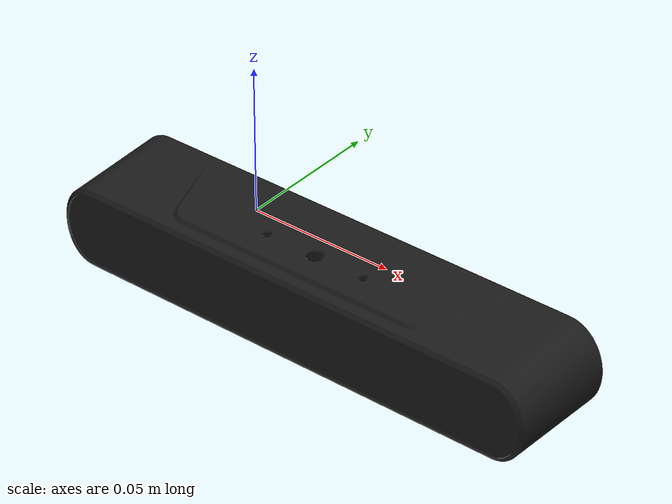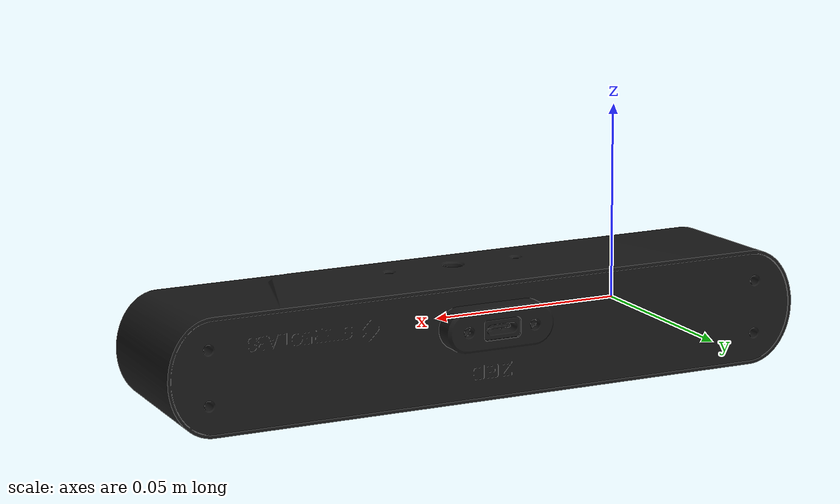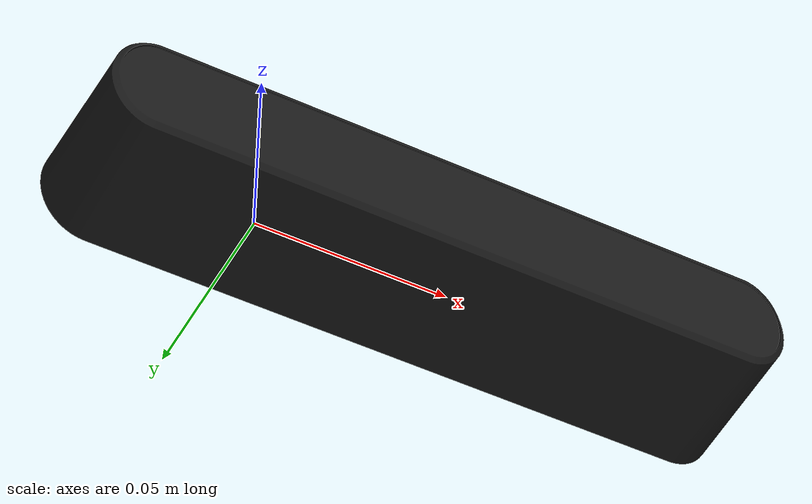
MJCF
<mujoco model="zed2i">
  <compiler angle="radian" meshdir="assets" autolimits="true"/>

  <option cone="elliptic" impratio="10"/>

  <asset>
    <material name="gray" rgba="0.8 0.8 0.8 1"/>
    <material name="black" rgba="0.1 0.1 0.1 1"/>
    <mesh name="zed2i" file="zed2i.obj" inertia="shell"/>
    <mesh name="zed2i_coll" file="zed2i.stl"/>
  </asset>

  <default>
    <default class="zed2i">
      <default class="visual">
        <geom type="mesh" contype="0" conaffinity="0" group="2" material="black"/>
      </default>
      <default class="collision">
        <geom type="mesh" group="3"/>
      </default>
    </default>
  </default>

  <worldbody>
    <body name="zed2i" childclass="zed2i">
      <geom mesh="zed2i" quat="0 0 1 0" material="black" class="visual"/>
      <geom mesh="zed2i_coll" quat="0 0 1 0" material="black" class="collision"/>

      <camera name="camera" pos="0 -0.02 0.005" euler="-1.5707963267948966 0 0" fovy="49"/>
    </body>
  </worldbody>

</mujoco>
